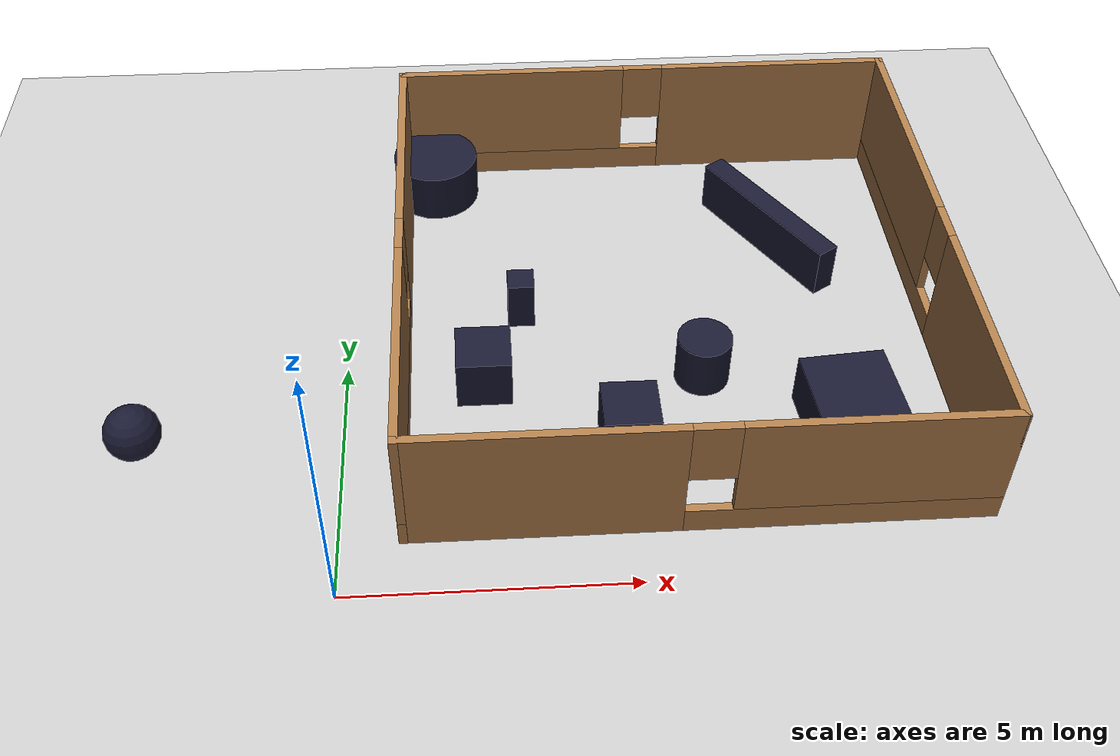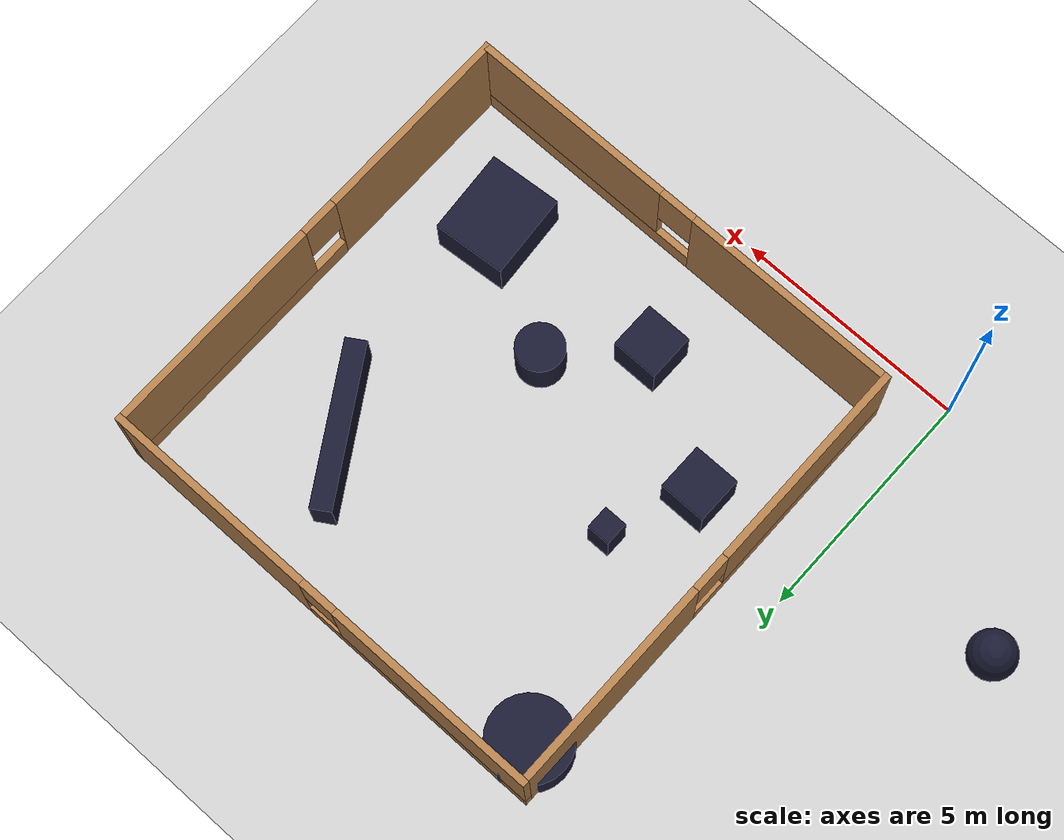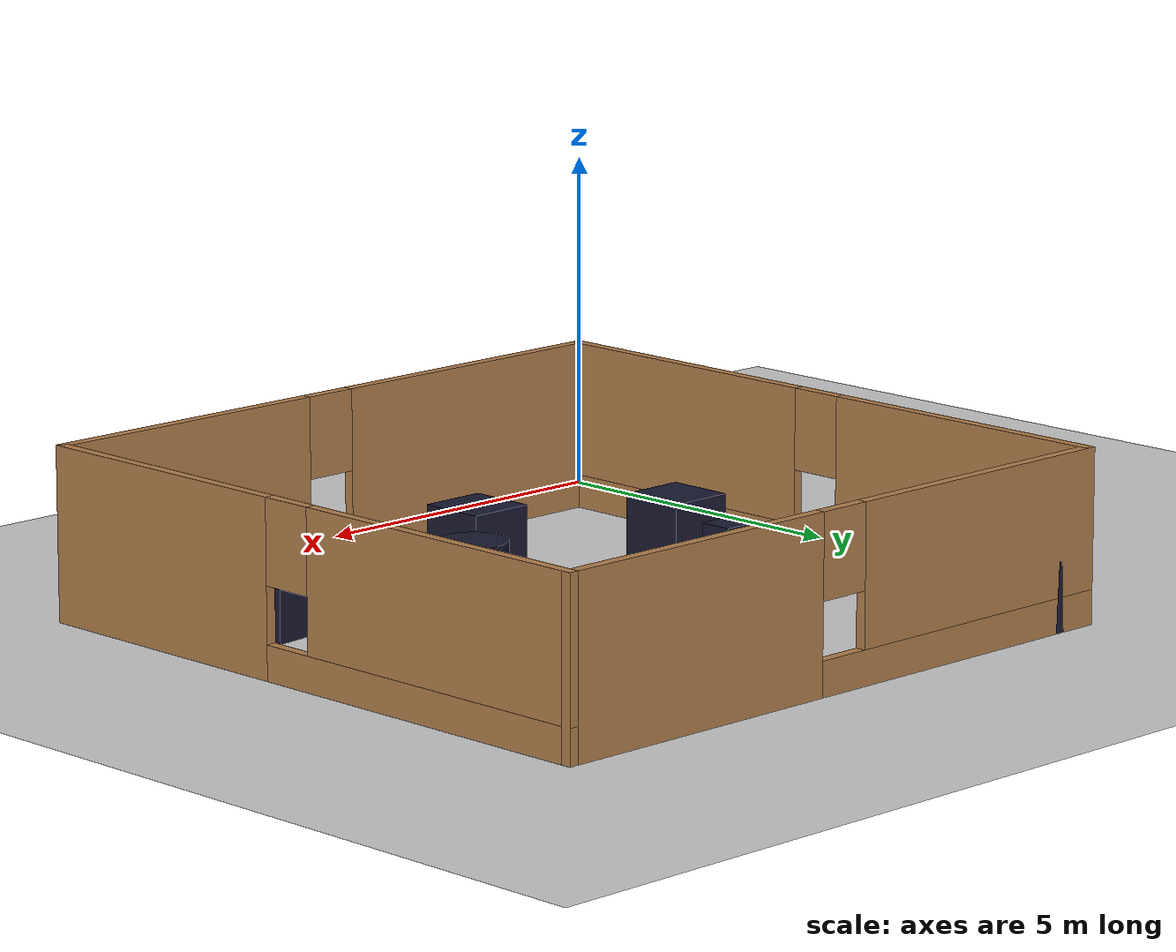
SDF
<sdf version="1.6">
 <world name="default">
  <light name="sun" type="directional">
   <pose>0 0 10 0 -0 0</pose>
   <diffuse>0.8 0.8 0.8 1</diffuse>
   <specular>0.1 0.1 0.1 1</specular>
   <attenuation>
    <range>1000</range>
    <constant>0.9</constant>
    <linear>0.01</linear>
    <quadratic>0.001</quadratic>
   </attenuation>
   <direction>-0.5 0.5 -1</direction>
  </light>
  <model name="ground_plane">
   <static>1</static>
   <link name="link">
    <collision name="collision">
     <geometry><plane><normal>0 0 1</normal><size>100 100</size></plane></geometry>
     <surface><friction><ode><mu>100</mu><mu2>50</mu2></ode></friction></surface>
    </collision>
    <visual name="visual">
     <cast_shadows>0</cast_shadows>
     <geometry><plane><normal>0 0 1</normal><size>100 100</size></plane></geometry>
     <material>
      <script><uri>file://media/materials/scripts/gazebo.material</uri><name>Gazebo/Grey</name></script>
     </material>
    </visual>
   </link>
  </model>
  <gravity>0 0 -9.8</gravity>
  <magnetic_field>6e-06 2.3e-05 -4.2e-05</magnetic_field>
  <atmosphere type="adiabatic"/>
  <physics name="default_physics" default="0" type="ode">
   <max_step_size>0.001</max_step_size>
   <real_time_factor>1</real_time_factor>
   <real_time_update_rate>1000</real_time_update_rate>
  </physics>
  <scene><ambient>0.4 0.4 0.4 1</ambient><background>0.7 0.7 0.7 1</background><shadows>1</shadows></scene>
  <spherical_coordinates>
   <surface_model>EARTH_WGS84</surface_model>
   <latitude_deg>0</latitude_deg>
   <longitude_deg>0</longitude_deg>
   <elevation>0</elevation>
   <heading_deg>0</heading_deg>
  </spherical_coordinates>
  <model name="box">
   <pose>6 6 0 0 -0 0</pose>
   <link name="Wall_0">
    <pose>0 -4.925 0 0 -0 0</pose>
    <visual name="Wall_0_Visual_0">
     <pose>-2.65077 0 1.25 0 -0 0</pose>
     <geometry><box><size>4.69846 0.15 2.5</size></box></geometry>
     <material>
      <script><uri>file://media/materials/scripts/gazebo.material</uri><name>Gazebo/Wood</name></script>
      <ambient>1 1 1 1</ambient>
     </material>
    </visual>
    <collision name="Wall_0_Collision_0">
     <geometry><box><size>4.69846 0.15 2.5</size></box></geometry>
     <pose>-2.65077 0 1.25 0 -0 0</pose>
    </collision>
    <visual name="Wall_0_Visual_1">
     <pose>2.34923 0 0.25 0 -0 0</pose>
     <geometry><box><size>5.30154 0.15 0.5</size></box></geometry>
     <material>
      <script><uri>file://media/materials/scripts/gazebo.material</uri><name>Gazebo/Wood</name></script>
      <ambient>1 1 1 1</ambient>
     </material>
    </visual>
    <collision name="Wall_0_Collision_1">
     <geometry><box><size>5.30154 0.15 0.5</size></box></geometry>
     <pose>2.34923 0 0.25 0 -0 0</pose>
    </collision>
    <visual name="Wall_0_Visual_2">
     <pose>2.74923 0 1.5 0 -0 0</pose>
     <geometry><box><size>4.50155 0.15 2</size></box></geometry>
     <material>
      <script><uri>file://media/materials/scripts/gazebo.material</uri><name>Gazebo/Wood</name></script>
      <ambient>1 1 1 1</ambient>
     </material>
    </visual>
    <collision name="Wall_0_Collision_2">
     <geometry><box><size>4.50155 0.15 2</size></box></geometry>
     <pose>2.74923 0 1.5 0 -0 0</pose>
    </collision>
    <visual name="Wall_0_Visual_3">
     <pose>0.098455 0 1.9 0 -0 0</pose>
     <geometry><box><size>0.8 0.15 1.2</size></box></geometry>
     <material>
      <script><uri>file://media/materials/scripts/gazebo.material</uri><name>Gazebo/Wood</name></script>
      <ambient>1 1 1 1</ambient>
     </material>
    </visual>
    <collision name="Wall_0_Collision_3">
     <geometry><box><size>0.8 0.15 1.2</size></box></geometry>
     <pose>0.098455 0 1.9 0 -0 0</pose>
    </collision>
   </link>
   <link name="Wall_4">
    <pose>4.925 0 0 0 -0 1.5708</pose>
    <visual name="Wall_4_Visual_0">
     <pose>-2.84612 0 1.25 0 -0 0</pose>
     <geometry><box><size>4.30776 0.15 2.5</size></box></geometry>
     <material>
      <script><uri>file://media/materials/scripts/gazebo.material</uri><name>Gazebo/Wood</name></script>
      <ambient>1 1 1 1</ambient>
     </material>
    </visual>
    <collision name="Wall_4_Collision_0">
     <geometry><box><size>4.30776 0.15 2.5</size></box></geometry>
     <pose>-2.84612 0 1.25 0 -0 0</pose>
    </collision>
    <visual name="Wall_4_Visual_1">
     <pose>2.15388 0 0.25 0 -0 0</pose>
     <geometry><box><size>5.69224 0.15 0.5</size></box></geometry>
     <material>
      <script><uri>file://media/materials/scripts/gazebo.material</uri><name>Gazebo/Wood</name></script>
      <ambient>1 1 1 1</ambient>
     </material>
    </visual>
    <collision name="Wall_4_Collision_1">
     <geometry><box><size>5.69224 0.15 0.5</size></box></geometry>
     <pose>2.15388 0 0.25 0 -0 0</pose>
    </collision>
    <visual name="Wall_4_Visual_2">
     <pose>2.55388 0 1.5 0 -0 0</pose>
     <geometry><box><size>4.89224 0.15 2</size></box></geometry>
     <material>
      <script><uri>file://media/materials/scripts/gazebo.material</uri><name>Gazebo/Wood</name></script>
      <ambient>1 1 1 1</ambient>
     </material>
    </visual>
    <collision name="Wall_4_Collision_2">
     <geometry><box><size>4.89224 0.15 2</size></box></geometry>
     <pose>2.55388 0 1.5 0 -0 0</pose>
    </collision>
    <visual name="Wall_4_Visual_3">
     <pose>-0.292235 0 1.9 0 -0 0</pose>
     <geometry><box><size>0.8 0.15 1.2</size></box></geometry>
     <material>
      <script><uri>file://media/materials/scripts/gazebo.material</uri><name>Gazebo/Wood</name></script>
      <ambient>1 1 1 1</ambient>
     </material>
    </visual>
    <collision name="Wall_4_Collision_3">
     <geometry><box><size>0.8 0.15 1.2</size></box></geometry>
     <pose>-0.292235 0 1.9 0 -0 0</pose>
    </collision>
   </link>
   <link name="Wall_5">
    <pose>0 4.925 0 0 -0 3.14159</pose>
    <visual name="Wall_5_Visual_0">
     <pose>-2.69603 0 1.25 0 -0 0</pose>
     <geometry><box><size>4.60795 0.15 2.5</size></box></geometry>
     <material>
      <script><uri>file://media/materials/scripts/gazebo.material</uri><name>Gazebo/Wood</name></script>
      <ambient>1 1 1 1</ambient>
     </material>
    </visual>
    <collision name="Wall_5_Collision_0">
     <geometry><box><size>4.60795 0.15 2.5</size></box></geometry>
     <pose>-2.69603 0 1.25 0 -0 0</pose>
    </collision>
    <visual name="Wall_5_Visual_1">
     <pose>2.30397 0 0.25 0 -0 0</pose>
     <geometry><box><size>5.39205 0.15 0.5</size></box></geometry>
     <material>
      <script><uri>file://media/materials/scripts/gazebo.material</uri><name>Gazebo/Wood</name></script>
      <ambient>1 1 1 1</ambient>
     </material>
    </visual>
    <collision name="Wall_5_Collision_1">
     <geometry><box><size>5.39205 0.15 0.5</size></box></geometry>
     <pose>2.30397 0 0.25 0 -0 0</pose>
    </collision>
    <visual name="Wall_5_Visual_2">
     <pose>2.70397 0 1.5 0 -0 0</pose>
     <geometry><box><size>4.59205 0.15 2</size></box></geometry>
     <material>
      <script><uri>file://media/materials/scripts/gazebo.material</uri><name>Gazebo/Wood</name></script>
      <ambient>1 1 1 1</ambient>
     </material>
    </visual>
    <collision name="Wall_5_Collision_2">
     <geometry><box><size>4.59205 0.15 2</size></box></geometry>
     <pose>2.70397 0 1.5 0 -0 0</pose>
    </collision>
    <visual name="Wall_5_Visual_3">
     <pose>0.007946 0 1.9 0 -0 0</pose>
     <geometry><box><size>0.8 0.15 1.2</size></box></geometry>
     <material>
      <script><uri>file://media/materials/scripts/gazebo.material</uri><name>Gazebo/Wood</name></script>
      <ambient>1 1 1 1</ambient>
     </material>
    </visual>
    <collision name="Wall_5_Collision_3">
     <geometry><box><size>0.8 0.15 1.2</size></box></geometry>
     <pose>0.007946 0 1.9 0 -0 0</pose>
    </collision>
   </link>
   <link name="Wall_6">
    <pose>-4.925 0 0 0 0 -1.5708</pose>
    <visual name="Wall_6_Visual_0">
     <pose>-2.67358 0 1.25 0 -0 0</pose>
     <geometry><box><size>4.65283 0.15 2.5</size></box></geometry>
     <material>
      <script><uri>file://media/materials/scripts/gazebo.material</uri><name>Gazebo/Wood</name></script>
      <ambient>1 1 1 1</ambient>
     </material>
    </visual>
    <collision name="Wall_6_Collision_0">
     <geometry><box><size>4.65283 0.15 2.5</size></box></geometry>
     <pose>-2.67358 0 1.25 0 -0 0</pose>
    </collision>
    <visual name="Wall_6_Visual_1">
     <pose>2.32642 0 0.25 0 -0 0</pose>
     <geometry><box><size>5.34717 0.15 0.5</size></box></geometry>
     <material>
      <script><uri>file://media/materials/scripts/gazebo.material</uri><name>Gazebo/Wood</name></script>
      <ambient>1 1 1 1</ambient>
     </material>
    </visual>
    <collision name="Wall_6_Collision_1">
     <geometry><box><size>5.34717 0.15 0.5</size></box></geometry>
     <pose>2.32642 0 0.25 0 -0 0</pose>
    </collision>
    <visual name="Wall_6_Visual_2">
     <pose>2.72642 0 1.5 0 -0 0</pose>
     <geometry><box><size>4.54717 0.15 2</size></box></geometry>
     <material>
      <script><uri>file://media/materials/scripts/gazebo.material</uri><name>Gazebo/Wood</name></script>
      <ambient>1 1 1 1</ambient>
     </material>
    </visual>
    <collision name="Wall_6_Collision_2">
     <geometry><box><size>4.54717 0.15 2</size></box></geometry>
     <pose>2.72642 0 1.5 0 -0 0</pose>
    </collision>
    <visual name="Wall_6_Visual_3">
     <pose>0.052833 0 1.9 0 -0 0</pose>
     <geometry><box><size>0.8 0.15 1.2</size></box></geometry>
     <material>
      <script><uri>file://media/materials/scripts/gazebo.material</uri><name>Gazebo/Wood</name></script>
      <ambient>1 1 1 1</ambient>
     </material>
    </visual>
    <collision name="Wall_6_Collision_3">
     <geometry><box><size>0.8 0.15 1.2</size></box></geometry>
     <pose>0.052833 0 1.9 0 -0 0</pose>
    </collision>
   </link>
   <static>1</static>
  </model>
  <model name="unit_box_0">
   <pose>2.5 4.5 0.499995 0 1e-05 0</pose>
   <link name="link">
    <inertial>
     <mass>1</mass>
     <inertia>
      <ixx>0.166667</ixx>
      <ixy>0</ixy>
      <ixz>0</ixz>
      <iyy>0.166667</iyy>
      <iyz>0</iyz>
      <izz>0.166667</izz>
     </inertia>
    </inertial>
    <collision name="collision"><geometry><box><size>1 1 1</size></box></geometry></collision>
    <visual name="visual">
     <geometry><box><size>1 1 1</size></box></geometry>
     <material>
      <ambient>0.1 0.1 0.1 1</ambient>
      <diffuse>0.1 0.1 0.2 1</diffuse>
      <specular>0 0 0 0</specular>
      <emissive>0 0 0 1</emissive>
     </material>
    </visual>
   </link>
  </model>
  <model name="unit_box_1">
   <pose>5.00001 3 0.499995 0 1e-05 -2e-06</pose>
   <link name="link">
    <inertial>
     <mass>1</mass>
     <inertia>
      <ixx>0.166667</ixx>
      <ixy>0</ixy>
      <ixz>0</ixz>
      <iyy>0.166667</iyy>
      <iyz>0</iyz>
      <izz>0.166667</izz>
     </inertia>
    </inertial>
    <collision name="collision"><geometry><box><size>1 1 1</size></box></geometry></collision>
    <visual name="visual">
     <geometry><box><size>1 1 1</size></box></geometry>
     <material>
      <ambient>0.1 0.1 0.1 1</ambient>
      <diffuse>0.1 0.1 0.2 1</diffuse>
      <specular>0 0 0 0</specular>
      <emissive>0 0 0 1</emissive>
     </material>
    </visual>
   </link>
  </model>
  <model name="unit_sphere_0">
   <pose>-3.60572 3.25089 0.5 0 -0 0</pose>
   <link name="link">
    <inertial>
     <mass>1</mass>
     <inertia><ixx>0.1</ixx><ixy>0</ixy><ixz>0</ixz><iyy>0.1</iyy><iyz>0</iyz><izz>0.1</izz></inertia>
    </inertial>
    <collision name="collision"><geometry><sphere><radius>0.5</radius></sphere></geometry></collision>
    <visual name="visual">
     <geometry><sphere><radius>0.5</radius></sphere></geometry>
     <material>
      <ambient>0.1 0.1 0.1 1</ambient>
      <diffuse>0.1 0.1 0.2 1</diffuse>
      <specular>0 0 0 0</specular>
      <emissive>0 0 0 1</emissive>
     </material>
    </visual>
   </link>
  </model>
  <model name="unit_cylinder_0">
   <pose>6.5 4.5 0.499995 -2e-06 0 0</pose>
   <link name="link">
    <inertial>
     <mass>1</mass>
     <inertia><ixx>0.145833</ixx><ixy>0</ixy><ixz>0</ixz><iyy>0.145833</iyy><iyz>0</iyz><izz>0.125</izz></inertia>
    </inertial>
    <collision name="collision">
     <geometry><cylinder><radius>0.5</radius><length>1</length></cylinder></geometry>
    </collision>
    <visual name="visual">
     <geometry><cylinder><radius>0.5</radius><length>1</length></cylinder></geometry>
     <material>
      <ambient>0.1 0.1 0.1 1</ambient>
      <diffuse>0.1 0.1 0.2 1</diffuse>
      <specular>0 0 0 0</specular>
      <emissive>0 0 0 1</emissive>
     </material>
    </visual>
   </link>
  </model>
  <model name="Untitled">
   <link name="link_0">
    <inertial>
     <mass>1</mass>
     <inertia>
      <ixx>0.166667</ixx>
      <ixy>0</ixy>
      <ixz>0</ixz>
      <iyy>0.166667</iyy>
      <iyz>0</iyz>
      <izz>0.166667</izz>
     </inertia>
    </inertial>
    <visual name="visual">
     <geometry><box><size>0.5 0.5 1</size></box></geometry>
     <material>
      <ambient>0.1 0.1 0.1 1</ambient>
      <diffuse>0.1 0.1 0.2 1</diffuse>
      <specular>0 0 0 0</specular>
      <emissive>0 0 0 1</emissive>
     </material>
    </visual>
    <collision name="collision">
     <geometry><box><size>0.5 0.5 1</size></box></geometry>
     <surface>
      <friction>
       <ode><mu>1</mu><mu2>1</mu2><fdir1>0 0 0</fdir1><slip1>0</slip1><slip2>0</slip2></ode>
       <torsional>
        <coefficient>1</coefficient>
        <patch_radius>0</patch_radius>
        <surface_radius>0</surface_radius>
        <use_patch_radius>1</use_patch_radius>
        <ode><slip>0</slip></ode>
       </torsional>
      </friction>
      <bounce><restitution_coefficient>0</restitution_coefficient><threshold>1e+06</threshold></bounce>
      <contact>
       <collide_without_contact>0</collide_without_contact>
       <collide_without_contact_bitmask>1</collide_without_contact_bitmask>
       <collide_bitmask>1</collide_bitmask>
       <ode>
        <soft_cfm>0</soft_cfm>
        <soft_erp>0.2</soft_erp>
        <kp>1e+13</kp>
        <kd>1</kd>
        <max_vel>0.01</max_vel>
        <min_depth>0</min_depth>
       </ode>
       <bullet>
        <split_impulse>1</split_impulse>
        <split_impulse_penetration_threshold>-0.01</split_impulse_penetration_threshold>
        <soft_cfm>0</soft_cfm>
        <soft_erp>0.2</soft_erp>
        <kp>1e+13</kp>
        <kd>1</kd>
       </bullet>
      </contact>
     </surface>
    </collision>
   </link>
   <static>0</static>
   <pose>3.25074 6.25398 0.499998 6e-06 4e-06 9e-06</pose>
  </model>
  <model name="unit_box_0_clone">
   <pose>8.30879 8.14384 0.5 -6e-06 -0 -1.01342</pose>
   <link name="link">
    <inertial>
     <mass>1</mass>
     <inertia>
      <ixx>0.166667</ixx>
      <ixy>0</ixy>
      <ixz>0</ixz>
      <iyy>0.166667</iyy>
      <iyz>0</iyz>
      <izz>0.166667</izz>
     </inertia>
    </inertial>
    <collision name="collision"><geometry><box><size>3.39889 0.445818 1</size></box></geometry></collision>
    <visual name="visual">
     <geometry><box><size>3.39889 0.445818 1</size></box></geometry>
     <material>
      <ambient>0.1 0.1 0.1 1</ambient>
      <diffuse>0.1 0.1 0.2 1</diffuse>
      <specular>0 0 0 0</specular>
      <emissive>0 0 0 1</emissive>
     </material>
    </visual>
   </link>
  </model>
  <model name="unit_cylinder_0_clone">
   <pose>1.65647 10.1543 0.505846 0.006198 -0.00298 -0.013365</pose>
   <link name="unit_cylinder_0_clone::link">
    <inertial>
     <mass>1</mass>
     <inertia><ixx>0.145833</ixx><ixy>0</ixy><ixz>0</ixz><iyy>0.145833</iyy><iyz>0</iyz><izz>0.125</izz></inertia>
    </inertial>
    <collision name="collision">
     <geometry><cylinder><radius>0.85182</radius><length>1</length></cylinder></geometry>
    </collision>
    <visual name="visual">
     <geometry><cylinder><radius>0.85182</radius><length>1</length></cylinder></geometry>
     <material>
      <ambient>0.1 0.1 0.1 1</ambient>
      <diffuse>0.1 0.1 0.2 1</diffuse>
      <specular>0 0 0 0</specular>
      <emissive>0 0 0 1</emissive>
     </material>
    </visual>
    <gravity>0</gravity>
   </link>
  </model>
  <model name="unit_box_0_clone_clone">
   <pose>8.92023 3.04745 0.499993 0 1e-05 0.080879</pose>
   <link name="link">
    <inertial>
     <mass>1</mass>
     <inertia>
      <ixx>0.166667</ixx>
      <ixy>0</ixy>
      <ixz>0</ixz>
      <iyy>0.166667</iyy>
      <iyz>0</iyz>
      <izz>0.166667</izz>
     </inertia>
    </inertial>
    <collision name="collision"><geometry><box><size>1.55076 1.80007 1</size></box></geometry></collision>
    <visual name="visual">
     <geometry><box><size>1.55076 1.80007 1</size></box></geometry>
     <material>
      <ambient>0.1 0.1 0.1 1</ambient>
      <diffuse>0.1 0.1 0.2 1</diffuse>
      <specular>0 0 0 0</specular>
      <emissive>0 0 0 1</emissive>
     </material>
    </visual>
   </link>
  </model>
 </world>
</sdf>
